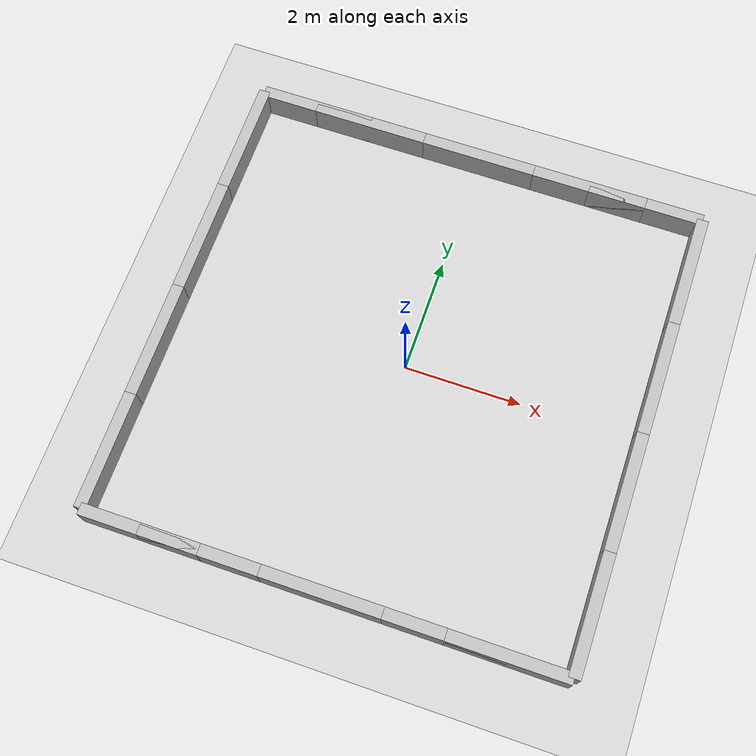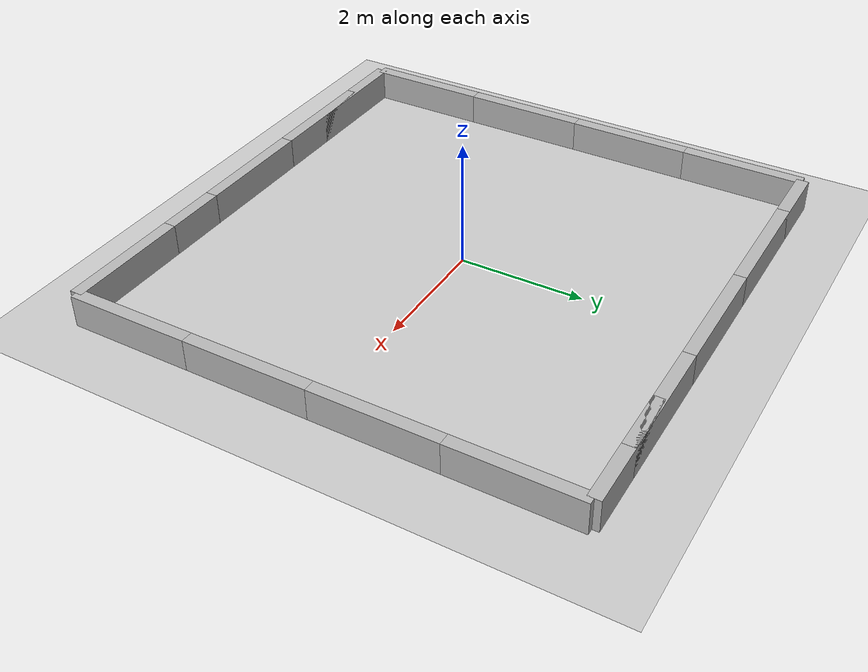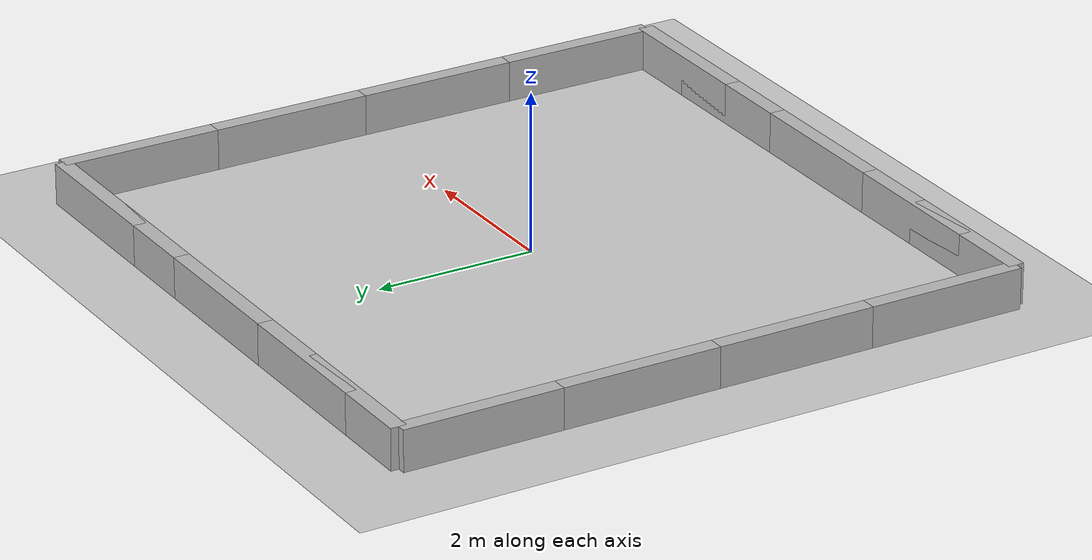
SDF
<sdf version="1.6">
 <world name="default">
  <model name="ground_plane">
   <static>1</static>
   <link name="link">
    <collision name="collision">
     <geometry><plane><normal>0 0 1</normal><size>100 100</size></plane></geometry>
     <surface>
      <contact><collide_bitmask>65535</collide_bitmask></contact>
      <friction><ode><mu>100</mu><mu2>50</mu2></ode></friction>
     </surface>
    </collision>
    <visual name="visual">
     <cast_shadows>0</cast_shadows>
     <geometry><plane><normal>0 0 1</normal><size>100 100</size></plane></geometry>
     <material>
      <script><uri>file://media/materials/scripts/gazebo.material</uri><name>Gazebo/Grey</name></script>
     </material>
    </visual>
   </link>
  </model>
  <gravity>0 0 -9.8</gravity>
  <magnetic_field>6e-06 2.3e-05 -4.2e-05</magnetic_field>
  <atmosphere type="adiabatic"/>
  <physics name="default_physics" default="0" type="ode">
   <max_step_size>0.001</max_step_size>
   <real_time_factor>1</real_time_factor>
   <real_time_update_rate>1000</real_time_update_rate>
  </physics>
  <scene><ambient>0.4 0.4 0.4 1</ambient><background>0.7 0.7 0.7 1</background><shadows>1</shadows></scene>
  <spherical_coordinates>
   <surface_model>EARTH_WGS84</surface_model>
   <latitude_deg>0</latitude_deg>
   <longitude_deg>0</longitude_deg>
   <elevation>0</elevation>
   <heading_deg>0</heading_deg>
  </spherical_coordinates>
  <light name="user_directional_light_0" type="directional">
   <pose>0.351978 -0.363043 1 0 -0 0</pose>
   <diffuse>0.5 0.5 0.5 1</diffuse>
   <specular>0.1 0.1 0.1 1</specular>
   <direction>0.1 0.1 -0.9</direction>
   <attenuation>
    <range>20</range>
    <constant>0.5</constant>
    <linear>0.01</linear>
    <quadratic>0.001</quadratic>
   </attenuation>
  </light>
  <model name="Color Tutorial Model">
   <static>1</static>
   <link name="grating">
    <collision name="body_collision"><geometry><box><size>2 0.2 1</size></box></geometry></collision>
    <visual name="body_visual">
     <geometry><box><size>2 0.2 1</size></box></geometry>
     <material>
      <script>
       <uri>/home/neuro/.gazebo/models/grating_wall/materials/scripts/</uri>
       <uri>/home/neuro/.gazebo/models/grating_wall/materials/scripts/</uri>
       <name>RepeatedTexture</name>
      </script>
     </material>
    </visual>
   </link>
   <pose>0 4 0 0 -0 0</pose>
  </model>
  <model name="Color Tutorial Model_clone">
   <static>1</static>
   <link name="grating">
    <collision name="body_collision"><geometry><box><size>2 0.2 1</size></box></geometry></collision>
    <visual name="body_visual">
     <geometry><box><size>2 0.2 1</size></box></geometry>
     <material>
      <script>
       <uri>/home/neuro/.gazebo/models/grating_wall/materials/scripts/</uri>
       <uri>/home/neuro/.gazebo/models/grating_wall/materials/scripts/</uri>
       <name>RepeatedTexture</name>
      </script>
     </material>
    </visual>
   </link>
   <pose>-2 4 0 0 -0 0</pose>
  </model>
  <model name="Color Tutorial Model_clone_0">
   <static>1</static>
   <link name="grating">
    <collision name="body_collision"><geometry><box><size>2 0.2 1</size></box></geometry></collision>
    <visual name="body_visual">
     <geometry><box><size>2 0.2 1</size></box></geometry>
     <material>
      <script>
       <uri>/home/neuro/.gazebo/models/grating_wall/materials/scripts/</uri>
       <uri>/home/neuro/.gazebo/models/grating_wall/materials/scripts/</uri>
       <name>RepeatedTexture</name>
      </script>
     </material>
    </visual>
   </link>
   <pose>2 4 0 0 -0 0</pose>
  </model>
  <model name="Color Tutorial Model_clone_1">
   <static>1</static>
   <link name="grating">
    <collision name="body_collision"><geometry><box><size>2 0.2 1</size></box></geometry></collision>
    <visual name="body_visual">
     <geometry><box><size>2 0.2 1</size></box></geometry>
     <material>
      <script>
       <uri>/home/neuro/.gazebo/models/grating_wall/materials/scripts/</uri>
       <uri>/home/neuro/.gazebo/models/grating_wall/materials/scripts/</uri>
       <name>RepeatedTexture</name>
      </script>
     </material>
    </visual>
   </link>
   <pose>0 -4 0 0 -0 0</pose>
  </model>
  <model name="Color Tutorial Model_clone_2">
   <static>1</static>
   <link name="grating">
    <collision name="body_collision"><geometry><box><size>2 0.2 1</size></box></geometry></collision>
    <visual name="body_visual">
     <geometry><box><size>2 0.2 1</size></box></geometry>
     <material>
      <script>
       <uri>/home/neuro/.gazebo/models/grating_wall/materials/scripts/</uri>
       <uri>/home/neuro/.gazebo/models/grating_wall/materials/scripts/</uri>
       <name>RepeatedTexture</name>
      </script>
     </material>
    </visual>
   </link>
   <pose>-2 -4 0 0 -0 0</pose>
  </model>
  <model name="Color Tutorial Model_clone_3">
   <static>1</static>
   <link name="grating">
    <collision name="body_collision"><geometry><box><size>2 0.2 1</size></box></geometry></collision>
    <visual name="body_visual">
     <geometry><box><size>2 0.2 1</size></box></geometry>
     <material>
      <script>
       <uri>/home/neuro/.gazebo/models/grating_wall/materials/scripts/</uri>
       <uri>/home/neuro/.gazebo/models/grating_wall/materials/scripts/</uri>
       <name>RepeatedTexture</name>
      </script>
     </material>
    </visual>
   </link>
   <pose>2 -4 0 0 -0 0</pose>
  </model>
  <model name="Color Tutorial Model_clone_4">
   <static>1</static>
   <link name="grating">
    <collision name="body_collision"><geometry><box><size>2 0.2 1</size></box></geometry></collision>
    <visual name="body_visual">
     <geometry><box><size>2 0.2 1</size></box></geometry>
     <material>
      <script>
       <uri>/home/neuro/.gazebo/models/grating_wall/materials/scripts/</uri>
       <uri>/home/neuro/.gazebo/models/grating_wall/materials/scripts/</uri>
       <name>RepeatedTexture</name>
      </script>
     </material>
    </visual>
   </link>
   <pose>-4 -3 0 0 -0 1.5708</pose>
  </model>
  <model name="Color Tutorial Model_clone_4_clone">
   <static>1</static>
   <link name="grating">
    <collision name="body_collision"><geometry><box><size>2 0.2 1</size></box></geometry></collision>
    <visual name="body_visual">
     <geometry><box><size>2 0.2 1</size></box></geometry>
     <material>
      <script>
       <uri>/home/neuro/.gazebo/models/grating_wall/materials/scripts/</uri>
       <uri>/home/neuro/.gazebo/models/grating_wall/materials/scripts/</uri>
       <name>RepeatedTexture</name>
      </script>
     </material>
    </visual>
   </link>
   <pose>-4 -1 0 0 -0 1.5708</pose>
  </model>
  <model name="Color Tutorial Model_clone_4_clone_0">
   <static>1</static>
   <link name="grating">
    <collision name="body_collision"><geometry><box><size>2 0.2 1</size></box></geometry></collision>
    <visual name="body_visual">
     <geometry><box><size>2 0.2 1</size></box></geometry>
     <material>
      <script>
       <uri>/home/neuro/.gazebo/models/grating_wall/materials/scripts/</uri>
       <uri>/home/neuro/.gazebo/models/grating_wall/materials/scripts/</uri>
       <name>RepeatedTexture</name>
      </script>
     </material>
    </visual>
   </link>
   <pose>-4 1 0 0 -0 1.5708</pose>
  </model>
  <model name="Color Tutorial Model_clone_4_clone_clone">
   <static>1</static>
   <link name="grating">
    <collision name="body_collision"><geometry><box><size>2 0.2 1</size></box></geometry></collision>
    <visual name="body_visual">
     <geometry><box><size>2 0.2 1</size></box></geometry>
     <material>
      <script>
       <uri>/home/neuro/.gazebo/models/grating_wall/materials/scripts/</uri>
       <uri>/home/neuro/.gazebo/models/grating_wall/materials/scripts/</uri>
       <name>RepeatedTexture</name>
      </script>
     </material>
    </visual>
   </link>
   <pose>4 -3 0 0 -0 1.5708</pose>
  </model>
  <model name="Color Tutorial Model_clone_4_clone_clone_0">
   <static>1</static>
   <link name="grating">
    <collision name="body_collision"><geometry><box><size>2 0.2 1</size></box></geometry></collision>
    <visual name="body_visual">
     <geometry><box><size>2 0.2 1</size></box></geometry>
     <material>
      <script>
       <uri>/home/neuro/.gazebo/models/grating_wall/materials/scripts/</uri>
       <uri>/home/neuro/.gazebo/models/grating_wall/materials/scripts/</uri>
       <name>RepeatedTexture</name>
      </script>
     </material>
    </visual>
   </link>
   <pose>4 -1 0 0 -0 1.5708</pose>
  </model>
  <model name="Color Tutorial Model_clone_4_clone_clone_1">
   <static>1</static>
   <link name="grating">
    <collision name="body_collision"><geometry><box><size>2 0.2 1</size></box></geometry></collision>
    <visual name="body_visual">
     <geometry><box><size>2 0.2 1</size></box></geometry>
     <material>
      <script>
       <uri>/home/neuro/.gazebo/models/grating_wall/materials/scripts/</uri>
       <uri>/home/neuro/.gazebo/models/grating_wall/materials/scripts/</uri>
       <name>RepeatedTexture</name>
      </script>
     </material>
    </visual>
   </link>
   <pose>4 1 0 0 -0 1.5708</pose>
  </model>
  <model name="Color Tutorial Model_clone_4_clone_clone_1_clone">
   <static>1</static>
   <link name="grating">
    <collision name="body_collision"><geometry><box><size>2 0.2 1</size></box></geometry></collision>
    <visual name="body_visual">
     <geometry><box><size>2 0.2 1</size></box></geometry>
     <material>
      <script>
       <uri>/home/neuro/.gazebo/models/grating_wall/materials/scripts/</uri>
       <uri>/home/neuro/.gazebo/models/grating_wall/materials/scripts/</uri>
       <name>RepeatedTexture</name>
      </script>
     </material>
    </visual>
   </link>
   <pose>4 3 0 0 -0 1.5708</pose>
  </model>
  <model name="Color Tutorial Model_clone_4_clone_0_clone">
   <static>1</static>
   <link name="grating">
    <collision name="body_collision"><geometry><box><size>2 0.2 1</size></box></geometry></collision>
    <visual name="body_visual">
     <geometry><box><size>2 0.2 1</size></box></geometry>
     <material>
      <script>
       <uri>/home/neuro/.gazebo/models/grating_wall/materials/scripts/</uri>
       <uri>/home/neuro/.gazebo/models/grating_wall/materials/scripts/</uri>
       <name>RepeatedTexture</name>
      </script>
     </material>
    </visual>
   </link>
   <pose>-4 3 0 0 -0 1.5708</pose>
  </model>
  <model name="Color Tutorial Model_clone_clone">
   <static>1</static>
   <link name="grating">
    <collision name="body_collision"><geometry><box><size>2 0.2 1</size></box></geometry></collision>
    <visual name="body_visual">
     <geometry><box><size>2 0.2 1</size></box></geometry>
     <material>
      <script>
       <uri>/home/neuro/.gazebo/models/grating_wall/materials/scripts/</uri>
       <uri>/home/neuro/.gazebo/models/grating_wall/materials/scripts/</uri>
       <name>RepeatedTexture</name>
      </script>
     </material>
    </visual>
   </link>
   <pose>-3 4 0 0 -0 0</pose>
  </model>
  <model name="Color Tutorial Model_clone_clone_0">
   <static>1</static>
   <link name="grating">
    <collision name="body_collision"><geometry><box><size>2 0.2 1</size></box></geometry></collision>
    <visual name="body_visual">
     <geometry><box><size>2 0.2 1</size></box></geometry>
     <material>
      <script>
       <uri>/home/neuro/.gazebo/models/grating_wall/materials/scripts/</uri>
       <uri>/home/neuro/.gazebo/models/grating_wall/materials/scripts/</uri>
       <name>RepeatedTexture</name>
      </script>
     </material>
    </visual>
   </link>
   <pose>3 4 0 0 -0 0</pose>
  </model>
  <model name="Color Tutorial Model_clone_clone_1">
   <static>1</static>
   <link name="grating">
    <collision name="body_collision"><geometry><box><size>2 0.2 1</size></box></geometry></collision>
    <visual name="body_visual">
     <geometry><box><size>2 0.2 1</size></box></geometry>
     <material>
      <script>
       <uri>/home/neuro/.gazebo/models/grating_wall/materials/scripts/</uri>
       <uri>/home/neuro/.gazebo/models/grating_wall/materials/scripts/</uri>
       <name>RepeatedTexture</name>
      </script>
     </material>
    </visual>
   </link>
   <pose>3 -4 0 0 -0 0</pose>
  </model>
  <model name="Color Tutorial Model_clone_clone_2">
   <static>1</static>
   <link name="grating">
    <collision name="body_collision"><geometry><box><size>2 0.2 1</size></box></geometry></collision>
    <visual name="body_visual">
     <geometry><box><size>2 0.2 1</size></box></geometry>
     <material>
      <script>
       <uri>/home/neuro/.gazebo/models/grating_wall/materials/scripts/</uri>
       <uri>/home/neuro/.gazebo/models/grating_wall/materials/scripts/</uri>
       <name>RepeatedTexture</name>
      </script>
     </material>
    </visual>
   </link>
   <pose>-3 -4 0 0 -0 0</pose>
  </model>
 </world>
</sdf>
